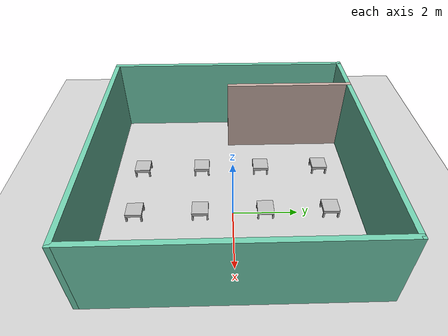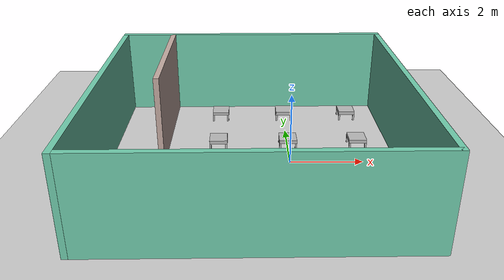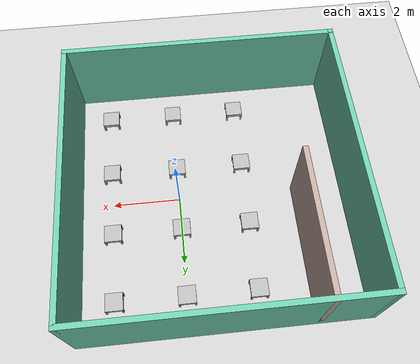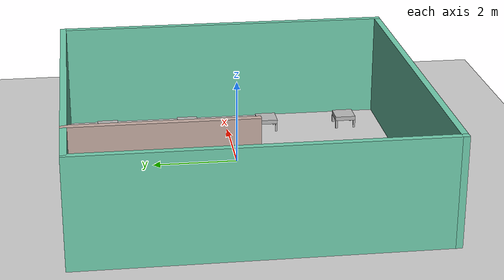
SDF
<sdf version="1.6">
 <world name="default">
  <light name="sun" type="directional">
   <pose>0 0 10 0 -0 0</pose>
   <diffuse>0.8 0.8 0.8 1</diffuse>
   <specular>0.1 0.1 0.1 1</specular>
   <attenuation>
    <range>1000</range>
    <constant>0.9</constant>
    <linear>0.01</linear>
    <quadratic>0.001</quadratic>
   </attenuation>
   <direction>-0.5 0.5 -1</direction>
  </light>
  <model name="ground_plane">
   <static>1</static>
   <link name="link">
    <collision name="collision">
     <geometry><plane><normal>0 0 1</normal><size>100 100</size></plane></geometry>
     <surface><friction><ode><mu>100</mu><mu2>50</mu2></ode></friction></surface>
    </collision>
    <visual name="visual">
     <cast_shadows>0</cast_shadows>
     <geometry><plane><normal>0 0 1</normal><size>100 100</size></plane></geometry>
     <material>
      <script><uri>file://media/materials/scripts/gazebo.material</uri><name>Gazebo/Grey</name></script>
     </material>
    </visual>
   </link>
  </model>
  <gravity>0 0 -9.8</gravity>
  <magnetic_field>6e-06 2.3e-05 -4.2e-05</magnetic_field>
  <atmosphere type="adiabatic"/>
  <physics name="default_physics" default="0" type="ode">
   <max_step_size>0.001</max_step_size>
   <real_time_factor>1</real_time_factor>
   <real_time_update_rate>1000</real_time_update_rate>
  </physics>
  <scene><ambient>0.4 0.4 0.4 1</ambient><background>0.7 0.7 0.7 1</background><shadows>1</shadows></scene>
  <spherical_coordinates>
   <surface_model>EARTH_WGS84</surface_model>
   <latitude_deg>0</latitude_deg>
   <longitude_deg>0</longitude_deg>
   <elevation>0</elevation>
   <heading_deg>0</heading_deg>
  </spherical_coordinates>
  <model name="stand_clone_0">
   <pose>-2 -3 -4e-06 2.1e-05 -0 0</pose>
   <static>0</static>
   <link name="stand_model::stand">
    <collision name="shelf_collision">
     <pose>0 0 0.25 0 -0 0</pose>
     <geometry><box><size>0.5 0.5 0.1</size></box></geometry>
    </collision>
    <visual name="shelf_visual">
     <pose>0 0 0.25 0 -0 0</pose>
     <geometry><box><size>0.5 0.5 0.1</size></box></geometry>
    </visual>
    <inertial>
     <mass>2</mass>
     <inertia><ixx>0.043</ixx><ixy>0</ixy><ixz>0</ixz><iyy>0.043</iyy><iyz>0</iyz><izz>0.083</izz></inertia>
    </inertial>
    <collision name="leg1_collision">
     <pose>0.225 0.225 0.1 0 -0 0</pose>
     <geometry><box><size>0.05 0.05 0.2</size></box></geometry>
    </collision>
    <visual name="leg1_visual">
     <pose>0.225 0.225 0.1 0 -0 0</pose>
     <geometry><box><size>0.05 0.05 0.2</size></box></geometry>
    </visual>
    <inertial>
     <mass>0.15</mass>
     <inertia>
      <ixx>0.00053125</ixx>
      <ixy>0</ixy>
      <ixz>0</ixz>
      <iyy>0.00053125</iyy>
      <iyz>0</iyz>
      <izz>0.00315625</izz>
     </inertia>
    </inertial>
    <collision name="leg_2collision">
     <pose>-0.225 0.225 0.1 0 -0 0</pose>
     <geometry><box><size>0.05 0.05 0.2</size></box></geometry>
    </collision>
    <visual name="leg2_visual">
     <pose>-0.225 0.225 0.1 0 -0 0</pose>
     <geometry><box><size>0.05 0.05 0.2</size></box></geometry>
    </visual>
    <inertial>
     <mass>0.15</mass>
     <inertia>
      <ixx>0.00053125</ixx>
      <ixy>0</ixy>
      <ixz>0</ixz>
      <iyy>0.00053125</iyy>
      <iyz>0</iyz>
      <izz>0.00315625</izz>
     </inertia>
    </inertial>
    <collision name="leg3_collision">
     <pose>0.225 -0.225 0.1 0 -0 0</pose>
     <geometry><box><size>0.05 0.05 0.2</size></box></geometry>
    </collision>
    <visual name="leg3_visual">
     <pose>0.225 -0.225 0.1 0 -0 0</pose>
     <geometry><box><size>0.05 0.05 0.2</size></box></geometry>
    </visual>
    <inertial>
     <mass>0.15</mass>
     <inertia>
      <ixx>0.00053125</ixx>
      <ixy>0</ixy>
      <ixz>0</ixz>
      <iyy>0.00053125</iyy>
      <iyz>0</iyz>
      <izz>0.00315625</izz>
     </inertia>
    </inertial>
    <collision name="leg4_collision">
     <pose>-0.225 -0.225 0.1 0 -0 0</pose>
     <geometry><box><size>0.05 0.05 0.2</size></box></geometry>
    </collision>
    <visual name="leg4_visual">
     <pose>-0.225 -0.225 0.1 0 -0 0</pose>
     <geometry><box><size>0.05 0.05 0.2</size></box></geometry>
    </visual>
    <inertial>
     <mass>0.15</mass>
     <inertia>
      <ixx>0.00053125</ixx>
      <ixy>0</ixy>
      <ixz>0</ixz>
      <iyy>0.00053125</iyy>
      <iyz>0</iyz>
      <izz>0.00315625</izz>
     </inertia>
    </inertial>
   </link>
  </model>
  <model name="stand_clone_1">
   <pose>0 -3 -4e-06 2.1e-05 -0 0</pose>
   <static>0</static>
   <link name="stand_model::stand">
    <collision name="shelf_collision">
     <pose>0 0 0.25 0 -0 0</pose>
     <geometry><box><size>0.5 0.5 0.1</size></box></geometry>
    </collision>
    <visual name="shelf_visual">
     <pose>0 0 0.25 0 -0 0</pose>
     <geometry><box><size>0.5 0.5 0.1</size></box></geometry>
    </visual>
    <inertial>
     <mass>2</mass>
     <inertia><ixx>0.043</ixx><ixy>0</ixy><ixz>0</ixz><iyy>0.043</iyy><iyz>0</iyz><izz>0.083</izz></inertia>
    </inertial>
    <collision name="leg1_collision">
     <pose>0.225 0.225 0.1 0 -0 0</pose>
     <geometry><box><size>0.05 0.05 0.2</size></box></geometry>
    </collision>
    <visual name="leg1_visual">
     <pose>0.225 0.225 0.1 0 -0 0</pose>
     <geometry><box><size>0.05 0.05 0.2</size></box></geometry>
    </visual>
    <inertial>
     <mass>0.15</mass>
     <inertia>
      <ixx>0.00053125</ixx>
      <ixy>0</ixy>
      <ixz>0</ixz>
      <iyy>0.00053125</iyy>
      <iyz>0</iyz>
      <izz>0.00315625</izz>
     </inertia>
    </inertial>
    <collision name="leg_2collision">
     <pose>-0.225 0.225 0.1 0 -0 0</pose>
     <geometry><box><size>0.05 0.05 0.2</size></box></geometry>
    </collision>
    <visual name="leg2_visual">
     <pose>-0.225 0.225 0.1 0 -0 0</pose>
     <geometry><box><size>0.05 0.05 0.2</size></box></geometry>
    </visual>
    <inertial>
     <mass>0.15</mass>
     <inertia>
      <ixx>0.00053125</ixx>
      <ixy>0</ixy>
      <ixz>0</ixz>
      <iyy>0.00053125</iyy>
      <iyz>0</iyz>
      <izz>0.00315625</izz>
     </inertia>
    </inertial>
    <collision name="leg3_collision">
     <pose>0.225 -0.225 0.1 0 -0 0</pose>
     <geometry><box><size>0.05 0.05 0.2</size></box></geometry>
    </collision>
    <visual name="leg3_visual">
     <pose>0.225 -0.225 0.1 0 -0 0</pose>
     <geometry><box><size>0.05 0.05 0.2</size></box></geometry>
    </visual>
    <inertial>
     <mass>0.15</mass>
     <inertia>
      <ixx>0.00053125</ixx>
      <ixy>0</ixy>
      <ixz>0</ixz>
      <iyy>0.00053125</iyy>
      <iyz>0</iyz>
      <izz>0.00315625</izz>
     </inertia>
    </inertial>
    <collision name="leg4_collision">
     <pose>-0.225 -0.225 0.1 0 -0 0</pose>
     <geometry><box><size>0.05 0.05 0.2</size></box></geometry>
    </collision>
    <visual name="leg4_visual">
     <pose>-0.225 -0.225 0.1 0 -0 0</pose>
     <geometry><box><size>0.05 0.05 0.2</size></box></geometry>
    </visual>
    <inertial>
     <mass>0.15</mass>
     <inertia>
      <ixx>0.00053125</ixx>
      <ixy>0</ixy>
      <ixz>0</ixz>
      <iyy>0.00053125</iyy>
      <iyz>0</iyz>
      <izz>0.00315625</izz>
     </inertia>
    </inertial>
   </link>
  </model>
  <model name="stand_clone_2">
   <pose>2 -3 -4e-06 2.1e-05 -0 0</pose>
   <static>0</static>
   <link name="stand_model::stand">
    <collision name="shelf_collision">
     <pose>0 0 0.25 0 -0 0</pose>
     <geometry><box><size>0.5 0.5 0.1</size></box></geometry>
    </collision>
    <visual name="shelf_visual">
     <pose>0 0 0.25 0 -0 0</pose>
     <geometry><box><size>0.5 0.5 0.1</size></box></geometry>
    </visual>
    <inertial>
     <mass>2</mass>
     <inertia><ixx>0.043</ixx><ixy>0</ixy><ixz>0</ixz><iyy>0.043</iyy><iyz>0</iyz><izz>0.083</izz></inertia>
    </inertial>
    <collision name="leg1_collision">
     <pose>0.225 0.225 0.1 0 -0 0</pose>
     <geometry><box><size>0.05 0.05 0.2</size></box></geometry>
    </collision>
    <visual name="leg1_visual">
     <pose>0.225 0.225 0.1 0 -0 0</pose>
     <geometry><box><size>0.05 0.05 0.2</size></box></geometry>
    </visual>
    <inertial>
     <mass>0.15</mass>
     <inertia>
      <ixx>0.00053125</ixx>
      <ixy>0</ixy>
      <ixz>0</ixz>
      <iyy>0.00053125</iyy>
      <iyz>0</iyz>
      <izz>0.00315625</izz>
     </inertia>
    </inertial>
    <collision name="leg_2collision">
     <pose>-0.225 0.225 0.1 0 -0 0</pose>
     <geometry><box><size>0.05 0.05 0.2</size></box></geometry>
    </collision>
    <visual name="leg2_visual">
     <pose>-0.225 0.225 0.1 0 -0 0</pose>
     <geometry><box><size>0.05 0.05 0.2</size></box></geometry>
    </visual>
    <inertial>
     <mass>0.15</mass>
     <inertia>
      <ixx>0.00053125</ixx>
      <ixy>0</ixy>
      <ixz>0</ixz>
      <iyy>0.00053125</iyy>
      <iyz>0</iyz>
      <izz>0.00315625</izz>
     </inertia>
    </inertial>
    <collision name="leg3_collision">
     <pose>0.225 -0.225 0.1 0 -0 0</pose>
     <geometry><box><size>0.05 0.05 0.2</size></box></geometry>
    </collision>
    <visual name="leg3_visual">
     <pose>0.225 -0.225 0.1 0 -0 0</pose>
     <geometry><box><size>0.05 0.05 0.2</size></box></geometry>
    </visual>
    <inertial>
     <mass>0.15</mass>
     <inertia>
      <ixx>0.00053125</ixx>
      <ixy>0</ixy>
      <ixz>0</ixz>
      <iyy>0.00053125</iyy>
      <iyz>0</iyz>
      <izz>0.00315625</izz>
     </inertia>
    </inertial>
    <collision name="leg4_collision">
     <pose>-0.225 -0.225 0.1 0 -0 0</pose>
     <geometry><box><size>0.05 0.05 0.2</size></box></geometry>
    </collision>
    <visual name="leg4_visual">
     <pose>-0.225 -0.225 0.1 0 -0 0</pose>
     <geometry><box><size>0.05 0.05 0.2</size></box></geometry>
    </visual>
    <inertial>
     <mass>0.15</mass>
     <inertia>
      <ixx>0.00053125</ixx>
      <ixy>0</ixy>
      <ixz>0</ixz>
      <iyy>0.00053125</iyy>
      <iyz>0</iyz>
      <izz>0.00315625</izz>
     </inertia>
    </inertial>
   </link>
  </model>
  <model name="stand_clone_3">
   <pose>-2 -1 -4e-06 2.1e-05 -0 0</pose>
   <static>0</static>
   <link name="stand_model::stand">
    <collision name="shelf_collision">
     <pose>0 0 0.25 0 -0 0</pose>
     <geometry><box><size>0.5 0.5 0.1</size></box></geometry>
    </collision>
    <visual name="shelf_visual">
     <pose>0 0 0.25 0 -0 0</pose>
     <geometry><box><size>0.5 0.5 0.1</size></box></geometry>
    </visual>
    <inertial>
     <mass>2</mass>
     <inertia><ixx>0.043</ixx><ixy>0</ixy><ixz>0</ixz><iyy>0.043</iyy><iyz>0</iyz><izz>0.083</izz></inertia>
    </inertial>
    <collision name="leg1_collision">
     <pose>0.225 0.225 0.1 0 -0 0</pose>
     <geometry><box><size>0.05 0.05 0.2</size></box></geometry>
    </collision>
    <visual name="leg1_visual">
     <pose>0.225 0.225 0.1 0 -0 0</pose>
     <geometry><box><size>0.05 0.05 0.2</size></box></geometry>
    </visual>
    <inertial>
     <mass>0.15</mass>
     <inertia>
      <ixx>0.00053125</ixx>
      <ixy>0</ixy>
      <ixz>0</ixz>
      <iyy>0.00053125</iyy>
      <iyz>0</iyz>
      <izz>0.00315625</izz>
     </inertia>
    </inertial>
    <collision name="leg_2collision">
     <pose>-0.225 0.225 0.1 0 -0 0</pose>
     <geometry><box><size>0.05 0.05 0.2</size></box></geometry>
    </collision>
    <visual name="leg2_visual">
     <pose>-0.225 0.225 0.1 0 -0 0</pose>
     <geometry><box><size>0.05 0.05 0.2</size></box></geometry>
    </visual>
    <inertial>
     <mass>0.15</mass>
     <inertia>
      <ixx>0.00053125</ixx>
      <ixy>0</ixy>
      <ixz>0</ixz>
      <iyy>0.00053125</iyy>
      <iyz>0</iyz>
      <izz>0.00315625</izz>
     </inertia>
    </inertial>
    <collision name="leg3_collision">
     <pose>0.225 -0.225 0.1 0 -0 0</pose>
     <geometry><box><size>0.05 0.05 0.2</size></box></geometry>
    </collision>
    <visual name="leg3_visual">
     <pose>0.225 -0.225 0.1 0 -0 0</pose>
     <geometry><box><size>0.05 0.05 0.2</size></box></geometry>
    </visual>
    <inertial>
     <mass>0.15</mass>
     <inertia>
      <ixx>0.00053125</ixx>
      <ixy>0</ixy>
      <ixz>0</ixz>
      <iyy>0.00053125</iyy>
      <iyz>0</iyz>
      <izz>0.00315625</izz>
     </inertia>
    </inertial>
    <collision name="leg4_collision">
     <pose>-0.225 -0.225 0.1 0 -0 0</pose>
     <geometry><box><size>0.05 0.05 0.2</size></box></geometry>
    </collision>
    <visual name="leg4_visual">
     <pose>-0.225 -0.225 0.1 0 -0 0</pose>
     <geometry><box><size>0.05 0.05 0.2</size></box></geometry>
    </visual>
    <inertial>
     <mass>0.15</mass>
     <inertia>
      <ixx>0.00053125</ixx>
      <ixy>0</ixy>
      <ixz>0</ixz>
      <iyy>0.00053125</iyy>
      <iyz>0</iyz>
      <izz>0.00315625</izz>
     </inertia>
    </inertial>
   </link>
  </model>
  <model name="stand_clone_4">
   <pose>0 -1 -4e-06 2.1e-05 -0 0</pose>
   <static>0</static>
   <link name="stand_model::stand">
    <collision name="shelf_collision">
     <pose>0 0 0.25 0 -0 0</pose>
     <geometry><box><size>0.5 0.5 0.1</size></box></geometry>
    </collision>
    <visual name="shelf_visual">
     <pose>0 0 0.25 0 -0 0</pose>
     <geometry><box><size>0.5 0.5 0.1</size></box></geometry>
    </visual>
    <inertial>
     <mass>2</mass>
     <inertia><ixx>0.043</ixx><ixy>0</ixy><ixz>0</ixz><iyy>0.043</iyy><iyz>0</iyz><izz>0.083</izz></inertia>
    </inertial>
    <collision name="leg1_collision">
     <pose>0.225 0.225 0.1 0 -0 0</pose>
     <geometry><box><size>0.05 0.05 0.2</size></box></geometry>
    </collision>
    <visual name="leg1_visual">
     <pose>0.225 0.225 0.1 0 -0 0</pose>
     <geometry><box><size>0.05 0.05 0.2</size></box></geometry>
    </visual>
    <inertial>
     <mass>0.15</mass>
     <inertia>
      <ixx>0.00053125</ixx>
      <ixy>0</ixy>
      <ixz>0</ixz>
      <iyy>0.00053125</iyy>
      <iyz>0</iyz>
      <izz>0.00315625</izz>
     </inertia>
    </inertial>
    <collision name="leg_2collision">
     <pose>-0.225 0.225 0.1 0 -0 0</pose>
     <geometry><box><size>0.05 0.05 0.2</size></box></geometry>
    </collision>
    <visual name="leg2_visual">
     <pose>-0.225 0.225 0.1 0 -0 0</pose>
     <geometry><box><size>0.05 0.05 0.2</size></box></geometry>
    </visual>
    <inertial>
     <mass>0.15</mass>
     <inertia>
      <ixx>0.00053125</ixx>
      <ixy>0</ixy>
      <ixz>0</ixz>
      <iyy>0.00053125</iyy>
      <iyz>0</iyz>
      <izz>0.00315625</izz>
     </inertia>
    </inertial>
    <collision name="leg3_collision">
     <pose>0.225 -0.225 0.1 0 -0 0</pose>
     <geometry><box><size>0.05 0.05 0.2</size></box></geometry>
    </collision>
    <visual name="leg3_visual">
     <pose>0.225 -0.225 0.1 0 -0 0</pose>
     <geometry><box><size>0.05 0.05 0.2</size></box></geometry>
    </visual>
    <inertial>
     <mass>0.15</mass>
     <inertia>
      <ixx>0.00053125</ixx>
      <ixy>0</ixy>
      <ixz>0</ixz>
      <iyy>0.00053125</iyy>
      <iyz>0</iyz>
      <izz>0.00315625</izz>
     </inertia>
    </inertial>
    <collision name="leg4_collision">
     <pose>-0.225 -0.225 0.1 0 -0 0</pose>
     <geometry><box><size>0.05 0.05 0.2</size></box></geometry>
    </collision>
    <visual name="leg4_visual">
     <pose>-0.225 -0.225 0.1 0 -0 0</pose>
     <geometry><box><size>0.05 0.05 0.2</size></box></geometry>
    </visual>
    <inertial>
     <mass>0.15</mass>
     <inertia>
      <ixx>0.00053125</ixx>
      <ixy>0</ixy>
      <ixz>0</ixz>
      <iyy>0.00053125</iyy>
      <iyz>0</iyz>
      <izz>0.00315625</izz>
     </inertia>
    </inertial>
   </link>
  </model>
  <model name="stand_clone_5">
   <pose>2 -1 -4e-06 2.1e-05 -0 0</pose>
   <static>0</static>
   <link name="stand_model::stand">
    <collision name="shelf_collision">
     <pose>0 0 0.25 0 -0 0</pose>
     <geometry><box><size>0.5 0.5 0.1</size></box></geometry>
    </collision>
    <visual name="shelf_visual">
     <pose>0 0 0.25 0 -0 0</pose>
     <geometry><box><size>0.5 0.5 0.1</size></box></geometry>
    </visual>
    <inertial>
     <mass>2</mass>
     <inertia><ixx>0.043</ixx><ixy>0</ixy><ixz>0</ixz><iyy>0.043</iyy><iyz>0</iyz><izz>0.083</izz></inertia>
    </inertial>
    <collision name="leg1_collision">
     <pose>0.225 0.225 0.1 0 -0 0</pose>
     <geometry><box><size>0.05 0.05 0.2</size></box></geometry>
    </collision>
    <visual name="leg1_visual">
     <pose>0.225 0.225 0.1 0 -0 0</pose>
     <geometry><box><size>0.05 0.05 0.2</size></box></geometry>
    </visual>
    <inertial>
     <mass>0.15</mass>
     <inertia>
      <ixx>0.00053125</ixx>
      <ixy>0</ixy>
      <ixz>0</ixz>
      <iyy>0.00053125</iyy>
      <iyz>0</iyz>
      <izz>0.00315625</izz>
     </inertia>
    </inertial>
    <collision name="leg_2collision">
     <pose>-0.225 0.225 0.1 0 -0 0</pose>
     <geometry><box><size>0.05 0.05 0.2</size></box></geometry>
    </collision>
    <visual name="leg2_visual">
     <pose>-0.225 0.225 0.1 0 -0 0</pose>
     <geometry><box><size>0.05 0.05 0.2</size></box></geometry>
    </visual>
    <inertial>
     <mass>0.15</mass>
     <inertia>
      <ixx>0.00053125</ixx>
      <ixy>0</ixy>
      <ixz>0</ixz>
      <iyy>0.00053125</iyy>
      <iyz>0</iyz>
      <izz>0.00315625</izz>
     </inertia>
    </inertial>
    <collision name="leg3_collision">
     <pose>0.225 -0.225 0.1 0 -0 0</pose>
     <geometry><box><size>0.05 0.05 0.2</size></box></geometry>
    </collision>
    <visual name="leg3_visual">
     <pose>0.225 -0.225 0.1 0 -0 0</pose>
     <geometry><box><size>0.05 0.05 0.2</size></box></geometry>
    </visual>
    <inertial>
     <mass>0.15</mass>
     <inertia>
      <ixx>0.00053125</ixx>
      <ixy>0</ixy>
      <ixz>0</ixz>
      <iyy>0.00053125</iyy>
      <iyz>0</iyz>
      <izz>0.00315625</izz>
     </inertia>
    </inertial>
    <collision name="leg4_collision">
     <pose>-0.225 -0.225 0.1 0 -0 0</pose>
     <geometry><box><size>0.05 0.05 0.2</size></box></geometry>
    </collision>
    <visual name="leg4_visual">
     <pose>-0.225 -0.225 0.1 0 -0 0</pose>
     <geometry><box><size>0.05 0.05 0.2</size></box></geometry>
    </visual>
    <inertial>
     <mass>0.15</mass>
     <inertia>
      <ixx>0.00053125</ixx>
      <ixy>0</ixy>
      <ixz>0</ixz>
      <iyy>0.00053125</iyy>
      <iyz>0</iyz>
      <izz>0.00315625</izz>
     </inertia>
    </inertial>
   </link>
  </model>
  <model name="stand_clone_6">
   <pose>-2 1 -4e-06 2.1e-05 -0 0</pose>
   <static>0</static>
   <link name="stand_model::stand">
    <collision name="shelf_collision">
     <pose>0 0 0.25 0 -0 0</pose>
     <geometry><box><size>0.5 0.5 0.1</size></box></geometry>
    </collision>
    <visual name="shelf_visual">
     <pose>0 0 0.25 0 -0 0</pose>
     <geometry><box><size>0.5 0.5 0.1</size></box></geometry>
    </visual>
    <inertial>
     <mass>2</mass>
     <inertia><ixx>0.043</ixx><ixy>0</ixy><ixz>0</ixz><iyy>0.043</iyy><iyz>0</iyz><izz>0.083</izz></inertia>
    </inertial>
    <collision name="leg1_collision">
     <pose>0.225 0.225 0.1 0 -0 0</pose>
     <geometry><box><size>0.05 0.05 0.2</size></box></geometry>
    </collision>
    <visual name="leg1_visual">
     <pose>0.225 0.225 0.1 0 -0 0</pose>
     <geometry><box><size>0.05 0.05 0.2</size></box></geometry>
    </visual>
    <inertial>
     <mass>0.15</mass>
     <inertia>
      <ixx>0.00053125</ixx>
      <ixy>0</ixy>
      <ixz>0</ixz>
      <iyy>0.00053125</iyy>
      <iyz>0</iyz>
      <izz>0.00315625</izz>
     </inertia>
    </inertial>
    <collision name="leg_2collision">
     <pose>-0.225 0.225 0.1 0 -0 0</pose>
     <geometry><box><size>0.05 0.05 0.2</size></box></geometry>
    </collision>
    <visual name="leg2_visual">
     <pose>-0.225 0.225 0.1 0 -0 0</pose>
     <geometry><box><size>0.05 0.05 0.2</size></box></geometry>
    </visual>
    <inertial>
     <mass>0.15</mass>
     <inertia>
      <ixx>0.00053125</ixx>
      <ixy>0</ixy>
      <ixz>0</ixz>
      <iyy>0.00053125</iyy>
      <iyz>0</iyz>
      <izz>0.00315625</izz>
     </inertia>
    </inertial>
    <collision name="leg3_collision">
     <pose>0.225 -0.225 0.1 0 -0 0</pose>
     <geometry><box><size>0.05 0.05 0.2</size></box></geometry>
    </collision>
    <visual name="leg3_visual">
     <pose>0.225 -0.225 0.1 0 -0 0</pose>
     <geometry><box><size>0.05 0.05 0.2</size></box></geometry>
    </visual>
    <inertial>
     <mass>0.15</mass>
     <inertia>
      <ixx>0.00053125</ixx>
      <ixy>0</ixy>
      <ixz>0</ixz>
      <iyy>0.00053125</iyy>
      <iyz>0</iyz>
      <izz>0.00315625</izz>
     </inertia>
    </inertial>
    <collision name="leg4_collision">
     <pose>-0.225 -0.225 0.1 0 -0 0</pose>
     <geometry><box><size>0.05 0.05 0.2</size></box></geometry>
    </collision>
    <visual name="leg4_visual">
     <pose>-0.225 -0.225 0.1 0 -0 0</pose>
     <geometry><box><size>0.05 0.05 0.2</size></box></geometry>
    </visual>
    <inertial>
     <mass>0.15</mass>
     <inertia>
      <ixx>0.00053125</ixx>
      <ixy>0</ixy>
      <ixz>0</ixz>
      <iyy>0.00053125</iyy>
      <iyz>0</iyz>
      <izz>0.00315625</izz>
     </inertia>
    </inertial>
   </link>
  </model>
  <model name="stand_clone_7">
   <pose>0 1 -4e-06 2.1e-05 -0 0</pose>
   <static>0</static>
   <link name="stand_model::stand">
    <collision name="shelf_collision">
     <pose>0 0 0.25 0 -0 0</pose>
     <geometry><box><size>0.5 0.5 0.1</size></box></geometry>
    </collision>
    <visual name="shelf_visual">
     <pose>0 0 0.25 0 -0 0</pose>
     <geometry><box><size>0.5 0.5 0.1</size></box></geometry>
    </visual>
    <inertial>
     <mass>2</mass>
     <inertia><ixx>0.043</ixx><ixy>0</ixy><ixz>0</ixz><iyy>0.043</iyy><iyz>0</iyz><izz>0.083</izz></inertia>
    </inertial>
    <collision name="leg1_collision">
     <pose>0.225 0.225 0.1 0 -0 0</pose>
     <geometry><box><size>0.05 0.05 0.2</size></box></geometry>
    </collision>
    <visual name="leg1_visual">
     <pose>0.225 0.225 0.1 0 -0 0</pose>
     <geometry><box><size>0.05 0.05 0.2</size></box></geometry>
    </visual>
    <inertial>
     <mass>0.15</mass>
     <inertia>
      <ixx>0.00053125</ixx>
      <ixy>0</ixy>
      <ixz>0</ixz>
      <iyy>0.00053125</iyy>
      <iyz>0</iyz>
      <izz>0.00315625</izz>
     </inertia>
    </inertial>
    <collision name="leg_2collision">
     <pose>-0.225 0.225 0.1 0 -0 0</pose>
     <geometry><box><size>0.05 0.05 0.2</size></box></geometry>
    </collision>
    <visual name="leg2_visual">
     <pose>-0.225 0.225 0.1 0 -0 0</pose>
     <geometry><box><size>0.05 0.05 0.2</size></box></geometry>
    </visual>
    <inertial>
     <mass>0.15</mass>
     <inertia>
      <ixx>0.00053125</ixx>
      <ixy>0</ixy>
      <ixz>0</ixz>
      <iyy>0.00053125</iyy>
      <iyz>0</iyz>
      <izz>0.00315625</izz>
     </inertia>
    </inertial>
    <collision name="leg3_collision">
     <pose>0.225 -0.225 0.1 0 -0 0</pose>
     <geometry><box><size>0.05 0.05 0.2</size></box></geometry>
    </collision>
    <visual name="leg3_visual">
     <pose>0.225 -0.225 0.1 0 -0 0</pose>
     <geometry><box><size>0.05 0.05 0.2</size></box></geometry>
    </visual>
    <inertial>
     <mass>0.15</mass>
     <inertia>
      <ixx>0.00053125</ixx>
      <ixy>0</ixy>
      <ixz>0</ixz>
      <iyy>0.00053125</iyy>
      <iyz>0</iyz>
      <izz>0.00315625</izz>
     </inertia>
    </inertial>
    <collision name="leg4_collision">
     <pose>-0.225 -0.225 0.1 0 -0 0</pose>
     <geometry><box><size>0.05 0.05 0.2</size></box></geometry>
    </collision>
    <visual name="leg4_visual">
     <pose>-0.225 -0.225 0.1 0 -0 0</pose>
     <geometry><box><size>0.05 0.05 0.2</size></box></geometry>
    </visual>
    <inertial>
     <mass>0.15</mass>
     <inertia>
      <ixx>0.00053125</ixx>
      <ixy>0</ixy>
      <ixz>0</ixz>
      <iyy>0.00053125</iyy>
      <iyz>0</iyz>
      <izz>0.00315625</izz>
     </inertia>
    </inertial>
   </link>
  </model>
  <model name="stand_clone_8">
   <pose>2 1 -4e-06 2.1e-05 -0 0</pose>
   <static>0</static>
   <link name="stand_model::stand">
    <collision name="shelf_collision">
     <pose>0 0 0.25 0 -0 0</pose>
     <geometry><box><size>0.5 0.5 0.1</size></box></geometry>
    </collision>
    <visual name="shelf_visual">
     <pose>0 0 0.25 0 -0 0</pose>
     <geometry><box><size>0.5 0.5 0.1</size></box></geometry>
    </visual>
    <inertial>
     <mass>2</mass>
     <inertia><ixx>0.043</ixx><ixy>0</ixy><ixz>0</ixz><iyy>0.043</iyy><iyz>0</iyz><izz>0.083</izz></inertia>
    </inertial>
    <collision name="leg1_collision">
     <pose>0.225 0.225 0.1 0 -0 0</pose>
     <geometry><box><size>0.05 0.05 0.2</size></box></geometry>
    </collision>
    <visual name="leg1_visual">
     <pose>0.225 0.225 0.1 0 -0 0</pose>
     <geometry><box><size>0.05 0.05 0.2</size></box></geometry>
    </visual>
    <inertial>
     <mass>0.15</mass>
     <inertia>
      <ixx>0.00053125</ixx>
      <ixy>0</ixy>
      <ixz>0</ixz>
      <iyy>0.00053125</iyy>
      <iyz>0</iyz>
      <izz>0.00315625</izz>
     </inertia>
    </inertial>
    <collision name="leg_2collision">
     <pose>-0.225 0.225 0.1 0 -0 0</pose>
     <geometry><box><size>0.05 0.05 0.2</size></box></geometry>
    </collision>
    <visual name="leg2_visual">
     <pose>-0.225 0.225 0.1 0 -0 0</pose>
     <geometry><box><size>0.05 0.05 0.2</size></box></geometry>
    </visual>
    <inertial>
     <mass>0.15</mass>
     <inertia>
      <ixx>0.00053125</ixx>
      <ixy>0</ixy>
      <ixz>0</ixz>
      <iyy>0.00053125</iyy>
      <iyz>0</iyz>
      <izz>0.00315625</izz>
     </inertia>
    </inertial>
    <collision name="leg3_collision">
     <pose>0.225 -0.225 0.1 0 -0 0</pose>
     <geometry><box><size>0.05 0.05 0.2</size></box></geometry>
    </collision>
    <visual name="leg3_visual">
     <pose>0.225 -0.225 0.1 0 -0 0</pose>
     <geometry><box><size>0.05 0.05 0.2</size></box></geometry>
    </visual>
    <inertial>
     <mass>0.15</mass>
     <inertia>
      <ixx>0.00053125</ixx>
      <ixy>0</ixy>
      <ixz>0</ixz>
      <iyy>0.00053125</iyy>
      <iyz>0</iyz>
      <izz>0.00315625</izz>
     </inertia>
    </inertial>
    <collision name="leg4_collision">
     <pose>-0.225 -0.225 0.1 0 -0 0</pose>
     <geometry><box><size>0.05 0.05 0.2</size></box></geometry>
    </collision>
    <visual name="leg4_visual">
     <pose>-0.225 -0.225 0.1 0 -0 0</pose>
     <geometry><box><size>0.05 0.05 0.2</size></box></geometry>
    </visual>
    <inertial>
     <mass>0.15</mass>
     <inertia>
      <ixx>0.00053125</ixx>
      <ixy>0</ixy>
      <ixz>0</ixz>
      <iyy>0.00053125</iyy>
      <iyz>0</iyz>
      <izz>0.00315625</izz>
     </inertia>
    </inertial>
   </link>
  </model>
  <model name="stand_clone_9">
   <pose>-2 3 -4e-06 2.1e-05 -0 0</pose>
   <static>0</static>
   <link name="stand_model::stand">
    <collision name="shelf_collision">
     <pose>0 0 0.25 0 -0 0</pose>
     <geometry><box><size>0.5 0.5 0.1</size></box></geometry>
    </collision>
    <visual name="shelf_visual">
     <pose>0 0 0.25 0 -0 0</pose>
     <geometry><box><size>0.5 0.5 0.1</size></box></geometry>
    </visual>
    <inertial>
     <mass>2</mass>
     <inertia><ixx>0.043</ixx><ixy>0</ixy><ixz>0</ixz><iyy>0.043</iyy><iyz>0</iyz><izz>0.083</izz></inertia>
    </inertial>
    <collision name="leg1_collision">
     <pose>0.225 0.225 0.1 0 -0 0</pose>
     <geometry><box><size>0.05 0.05 0.2</size></box></geometry>
    </collision>
    <visual name="leg1_visual">
     <pose>0.225 0.225 0.1 0 -0 0</pose>
     <geometry><box><size>0.05 0.05 0.2</size></box></geometry>
    </visual>
    <inertial>
     <mass>0.15</mass>
     <inertia>
      <ixx>0.00053125</ixx>
      <ixy>0</ixy>
      <ixz>0</ixz>
      <iyy>0.00053125</iyy>
      <iyz>0</iyz>
      <izz>0.00315625</izz>
     </inertia>
    </inertial>
    <collision name="leg_2collision">
     <pose>-0.225 0.225 0.1 0 -0 0</pose>
     <geometry><box><size>0.05 0.05 0.2</size></box></geometry>
    </collision>
    <visual name="leg2_visual">
     <pose>-0.225 0.225 0.1 0 -0 0</pose>
     <geometry><box><size>0.05 0.05 0.2</size></box></geometry>
    </visual>
    <inertial>
     <mass>0.15</mass>
     <inertia>
      <ixx>0.00053125</ixx>
      <ixy>0</ixy>
      <ixz>0</ixz>
      <iyy>0.00053125</iyy>
      <iyz>0</iyz>
      <izz>0.00315625</izz>
     </inertia>
    </inertial>
    <collision name="leg3_collision">
     <pose>0.225 -0.225 0.1 0 -0 0</pose>
     <geometry><box><size>0.05 0.05 0.2</size></box></geometry>
    </collision>
    <visual name="leg3_visual">
     <pose>0.225 -0.225 0.1 0 -0 0</pose>
     <geometry><box><size>0.05 0.05 0.2</size></box></geometry>
    </visual>
    <inertial>
     <mass>0.15</mass>
     <inertia>
      <ixx>0.00053125</ixx>
      <ixy>0</ixy>
      <ixz>0</ixz>
      <iyy>0.00053125</iyy>
      <iyz>0</iyz>
      <izz>0.00315625</izz>
     </inertia>
    </inertial>
    <collision name="leg4_collision">
     <pose>-0.225 -0.225 0.1 0 -0 0</pose>
     <geometry><box><size>0.05 0.05 0.2</size></box></geometry>
    </collision>
    <visual name="leg4_visual">
     <pose>-0.225 -0.225 0.1 0 -0 0</pose>
     <geometry><box><size>0.05 0.05 0.2</size></box></geometry>
    </visual>
    <inertial>
     <mass>0.15</mass>
     <inertia>
      <ixx>0.00053125</ixx>
      <ixy>0</ixy>
      <ixz>0</ixz>
      <iyy>0.00053125</iyy>
      <iyz>0</iyz>
      <izz>0.00315625</izz>
     </inertia>
    </inertial>
   </link>
  </model>
  <model name="stand_clone_10">
   <pose>0 3 -4e-06 2.1e-05 -0 0</pose>
   <static>0</static>
   <link name="stand_model::stand">
    <collision name="shelf_collision">
     <pose>0 0 0.25 0 -0 0</pose>
     <geometry><box><size>0.5 0.5 0.1</size></box></geometry>
    </collision>
    <visual name="shelf_visual">
     <pose>0 0 0.25 0 -0 0</pose>
     <geometry><box><size>0.5 0.5 0.1</size></box></geometry>
    </visual>
    <inertial>
     <mass>2</mass>
     <inertia><ixx>0.043</ixx><ixy>0</ixy><ixz>0</ixz><iyy>0.043</iyy><iyz>0</iyz><izz>0.083</izz></inertia>
    </inertial>
    <collision name="leg1_collision">
     <pose>0.225 0.225 0.1 0 -0 0</pose>
     <geometry><box><size>0.05 0.05 0.2</size></box></geometry>
    </collision>
    <visual name="leg1_visual">
     <pose>0.225 0.225 0.1 0 -0 0</pose>
     <geometry><box><size>0.05 0.05 0.2</size></box></geometry>
    </visual>
    <inertial>
     <mass>0.15</mass>
     <inertia>
      <ixx>0.00053125</ixx>
      <ixy>0</ixy>
      <ixz>0</ixz>
      <iyy>0.00053125</iyy>
      <iyz>0</iyz>
      <izz>0.00315625</izz>
     </inertia>
    </inertial>
    <collision name="leg_2collision">
     <pose>-0.225 0.225 0.1 0 -0 0</pose>
     <geometry><box><size>0.05 0.05 0.2</size></box></geometry>
    </collision>
    <visual name="leg2_visual">
     <pose>-0.225 0.225 0.1 0 -0 0</pose>
     <geometry><box><size>0.05 0.05 0.2</size></box></geometry>
    </visual>
    <inertial>
     <mass>0.15</mass>
     <inertia>
      <ixx>0.00053125</ixx>
      <ixy>0</ixy>
      <ixz>0</ixz>
      <iyy>0.00053125</iyy>
      <iyz>0</iyz>
      <izz>0.00315625</izz>
     </inertia>
    </inertial>
    <collision name="leg3_collision">
     <pose>0.225 -0.225 0.1 0 -0 0</pose>
     <geometry><box><size>0.05 0.05 0.2</size></box></geometry>
    </collision>
    <visual name="leg3_visual">
     <pose>0.225 -0.225 0.1 0 -0 0</pose>
     <geometry><box><size>0.05 0.05 0.2</size></box></geometry>
    </visual>
    <inertial>
     <mass>0.15</mass>
     <inertia>
      <ixx>0.00053125</ixx>
      <ixy>0</ixy>
      <ixz>0</ixz>
      <iyy>0.00053125</iyy>
      <iyz>0</iyz>
      <izz>0.00315625</izz>
     </inertia>
    </inertial>
    <collision name="leg4_collision">
     <pose>-0.225 -0.225 0.1 0 -0 0</pose>
     <geometry><box><size>0.05 0.05 0.2</size></box></geometry>
    </collision>
    <visual name="leg4_visual">
     <pose>-0.225 -0.225 0.1 0 -0 0</pose>
     <geometry><box><size>0.05 0.05 0.2</size></box></geometry>
    </visual>
    <inertial>
     <mass>0.15</mass>
     <inertia>
      <ixx>0.00053125</ixx>
      <ixy>0</ixy>
      <ixz>0</ixz>
      <iyy>0.00053125</iyy>
      <iyz>0</iyz>
      <izz>0.00315625</izz>
     </inertia>
    </inertial>
   </link>
  </model>
  <model name="stand_clone_11">
   <pose>2 3 -4e-06 2.1e-05 -0 0</pose>
   <static>0</static>
   <link name="stand_model::stand">
    <collision name="shelf_collision">
     <pose>0 0 0.25 0 -0 0</pose>
     <geometry><box><size>0.5 0.5 0.1</size></box></geometry>
    </collision>
    <visual name="shelf_visual">
     <pose>0 0 0.25 0 -0 0</pose>
     <geometry><box><size>0.5 0.5 0.1</size></box></geometry>
    </visual>
    <inertial>
     <mass>2</mass>
     <inertia><ixx>0.043</ixx><ixy>0</ixy><ixz>0</ixz><iyy>0.043</iyy><iyz>0</iyz><izz>0.083</izz></inertia>
    </inertial>
    <collision name="leg1_collision">
     <pose>0.225 0.225 0.1 0 -0 0</pose>
     <geometry><box><size>0.05 0.05 0.2</size></box></geometry>
    </collision>
    <visual name="leg1_visual">
     <pose>0.225 0.225 0.1 0 -0 0</pose>
     <geometry><box><size>0.05 0.05 0.2</size></box></geometry>
    </visual>
    <inertial>
     <mass>0.15</mass>
     <inertia>
      <ixx>0.00053125</ixx>
      <ixy>0</ixy>
      <ixz>0</ixz>
      <iyy>0.00053125</iyy>
      <iyz>0</iyz>
      <izz>0.00315625</izz>
     </inertia>
    </inertial>
    <collision name="leg_2collision">
     <pose>-0.225 0.225 0.1 0 -0 0</pose>
     <geometry><box><size>0.05 0.05 0.2</size></box></geometry>
    </collision>
    <visual name="leg2_visual">
     <pose>-0.225 0.225 0.1 0 -0 0</pose>
     <geometry><box><size>0.05 0.05 0.2</size></box></geometry>
    </visual>
    <inertial>
     <mass>0.15</mass>
     <inertia>
      <ixx>0.00053125</ixx>
      <ixy>0</ixy>
      <ixz>0</ixz>
      <iyy>0.00053125</iyy>
      <iyz>0</iyz>
      <izz>0.00315625</izz>
     </inertia>
    </inertial>
    <collision name="leg3_collision">
     <pose>0.225 -0.225 0.1 0 -0 0</pose>
     <geometry><box><size>0.05 0.05 0.2</size></box></geometry>
    </collision>
    <visual name="leg3_visual">
     <pose>0.225 -0.225 0.1 0 -0 0</pose>
     <geometry><box><size>0.05 0.05 0.2</size></box></geometry>
    </visual>
    <inertial>
     <mass>0.15</mass>
     <inertia>
      <ixx>0.00053125</ixx>
      <ixy>0</ixy>
      <ixz>0</ixz>
      <iyy>0.00053125</iyy>
      <iyz>0</iyz>
      <izz>0.00315625</izz>
     </inertia>
    </inertial>
    <collision name="leg4_collision">
     <pose>-0.225 -0.225 0.1 0 -0 0</pose>
     <geometry><box><size>0.05 0.05 0.2</size></box></geometry>
    </collision>
    <visual name="leg4_visual">
     <pose>-0.225 -0.225 0.1 0 -0 0</pose>
     <geometry><box><size>0.05 0.05 0.2</size></box></geometry>
    </visual>
    <inertial>
     <mass>0.15</mass>
     <inertia>
      <ixx>0.00053125</ixx>
      <ixy>0</ixy>
      <ixz>0</ixz>
      <iyy>0.00053125</iyy>
      <iyz>0</iyz>
      <izz>0.00315625</izz>
     </inertia>
    </inertial>
   </link>
  </model>
  <model name="my_warehouse">
   <pose>-1 0 0 0 -0 0</pose>
   <link name="Wall_10">
    <collision name="Wall_10_Collision">
     <geometry><box><size>8.15 0.15 2.5</size></box></geometry>
     <pose>0 0 1.25 0 -0 0</pose>
    </collision>
    <visual name="Wall_10_Visual">
     <pose>0 0 1.25 0 -0 0</pose>
     <geometry><box><size>8.15 0.15 2.5</size></box></geometry>
     <material>
      <script><uri>file://media/materials/scripts/gazebo.material</uri><name>Gazebo/Grey</name></script>
      <ambient>0.435294 0.796078 0.67451 1</ambient>
     </material>
    </visual>
    <pose>0 4 0 0 -0 0</pose>
   </link>
   <link name="Wall_11">
    <collision name="Wall_11_Collision">
     <geometry><box><size>8.15 0.15 2.5</size></box></geometry>
     <pose>0 0 1.25 0 -0 0</pose>
    </collision>
    <visual name="Wall_11_Visual">
     <pose>0 0 1.25 0 -0 0</pose>
     <geometry><box><size>8.15 0.15 2.5</size></box></geometry>
     <material>
      <script><uri>file://media/materials/scripts/gazebo.material</uri><name>Gazebo/Grey</name></script>
      <ambient>0.435294 0.796078 0.67451 1</ambient>
     </material>
    </visual>
    <pose>4 0 0 0 0 -1.5708</pose>
   </link>
   <link name="Wall_15">
    <collision name="Wall_15_Collision">
     <geometry><box><size>4.15 0.15 2.5</size></box></geometry>
     <pose>0 0 1.25 0 -0 0</pose>
    </collision>
    <visual name="Wall_15_Visual">
     <pose>0 0 1.25 0 -0 0</pose>
     <geometry><box><size>4.15 0.15 2.5</size></box></geometry>
     <material>
      <script><uri>file://media/materials/scripts/gazebo.material</uri><name>Gazebo/Grey</name></script>
      <ambient>0.760784 0.662745 0.627451 1</ambient>
     </material>
    </visual>
    <pose>-2.5 2 0 0 0 -1.5708</pose>
   </link>
   <link name="Wall_6">
    <collision name="Wall_6_Collision">
     <geometry><box><size>8.15 0.15 2.5</size></box></geometry>
     <pose>0 0 1.25 0 -0 0</pose>
    </collision>
    <visual name="Wall_6_Visual">
     <pose>0 0 1.25 0 -0 0</pose>
     <geometry><box><size>8.15 0.15 2.5</size></box></geometry>
     <material>
      <script><uri>file://media/materials/scripts/gazebo.material</uri><name>Gazebo/Grey</name></script>
      <ambient>0.435294 0.796078 0.67451 1</ambient>
     </material>
    </visual>
    <pose>0 -4 0 0 -0 3.14159</pose>
   </link>
   <link name="Wall_7">
    <collision name="Wall_7_Collision">
     <geometry><box><size>8.15 0.15 2.5</size></box></geometry>
     <pose>0 0 1.25 0 -0 0</pose>
    </collision>
    <visual name="Wall_7_Visual">
     <pose>0 0 1.25 0 -0 0</pose>
     <geometry><box><size>8.15 0.15 2.5</size></box></geometry>
     <material>
      <script><uri>file://media/materials/scripts/gazebo.material</uri><name>Gazebo/Grey</name></script>
      <ambient>0.435294 0.796078 0.67451 1</ambient>
     </material>
    </visual>
    <pose>-4 0 0 0 -0 1.5708</pose>
   </link>
   <static>1</static>
  </model>
 </world>
</sdf>
